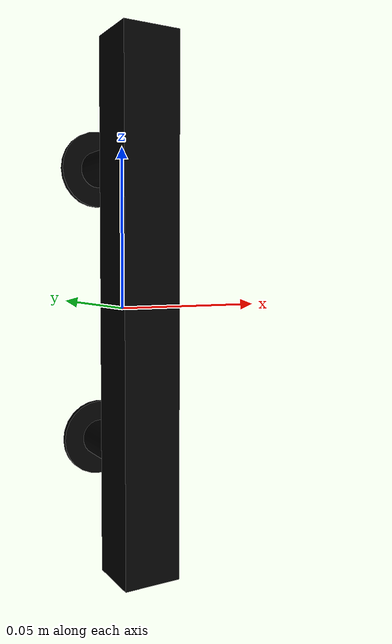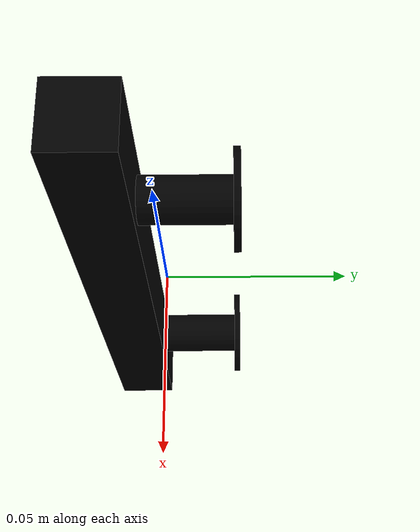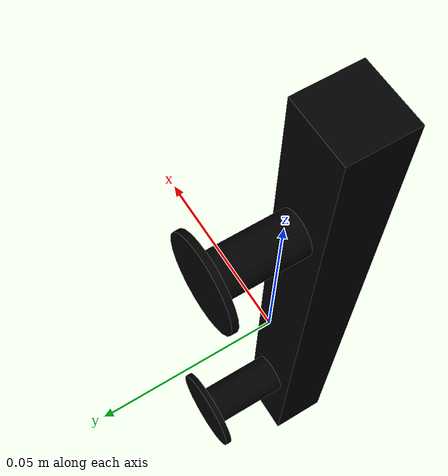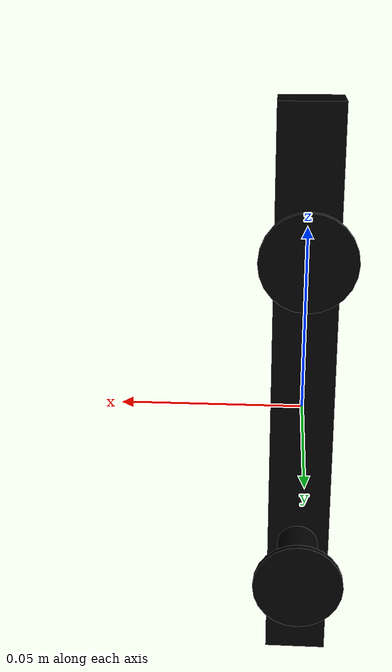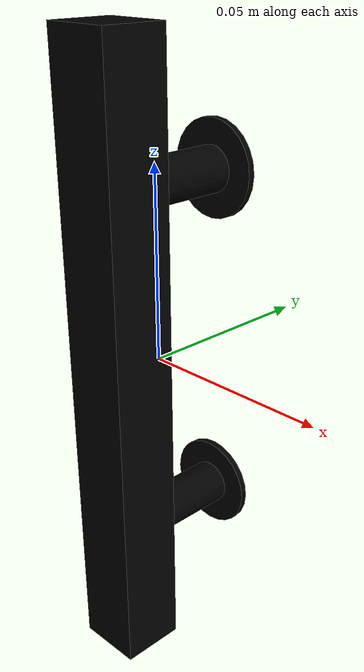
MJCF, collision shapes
<?xml version="1.0" ?>
<mujoco model="model">
    <compiler angle="radian"/>
    <asset>
        <mesh file="visuals/CabinetHandle013.obj" name="mesh"/>
        <texture file="visuals/T_BC001.png" name="tex" type="2d"/>
        <material name="mat" rgba="1 1 1 1.0" texture="tex" shininess="2" specular="0.7"/>
    </asset>
    <default>
        <default class="visual">
            <geom conaffinity="0" contype="0" group="1" type="mesh"/>
        </default>
        <default class="collision">
            <geom group="0" rgba="0 0 0 0"/>
        </default>
        <default class="spawn">
            <geom group="0" rgba="0 0 0 0" contype="0" conaffinity="0"/>
            <site group="0" rgba="0 0 0 0"/>
        </default>
    </default>
    <worldbody>
        <body>
            <body name="object">
                <geom mesh="mesh" type="mesh" solimp="0.998 0.998 0.001" solref="0.001 1" density="100" friction="0.95 0.3 0.1" class="visual" material="mat"/>
                <geom class="collision" type="cylinder" pos="0.0 0.019690759479999542 0.045408960431814194" size="0.012468547560274601 0.0008646444766782224" quat="0.7071067094802856 0.7071068286895752 0.0 0.0"/>
                <geom class="collision" type="cylinder" pos="-4.615296233005099e-20 0.007231603842228651 0.04538153484463692" size="0.005925613921135664 0.011659577488899231" quat="0.7071067094802856 0.7071068286895752 0.0 0.0"/>
                <geom class="collision" type="cylinder" pos="0.0 0.01969076320528984 -0.04527813941240311" size="0.012468547560274601 0.0008646444766782224" quat="0.7071067094802856 0.7071068286895752 0.0 0.0" name="handle_connector"/>
                <geom class="collision" type="cylinder" pos="-4.615296233005099e-20 0.007231608033180237 -0.04530556499958038" size="0.005925613921135664 0.011659577488899231" quat="0.7071067094802856 0.7071068286895752 0.0 0.0"/>
                <geom class="collision" type="box" pos="-0.00019599893130362034 -0.01227172277867794 0.0" size="0.008918927051126957 0.008546818979084492 0.08118434995412827" quat="1.0 0.0 0.0 0.0"/>
            </body>
        </body>
    </worldbody>
    <actuator/>
</mujoco>
